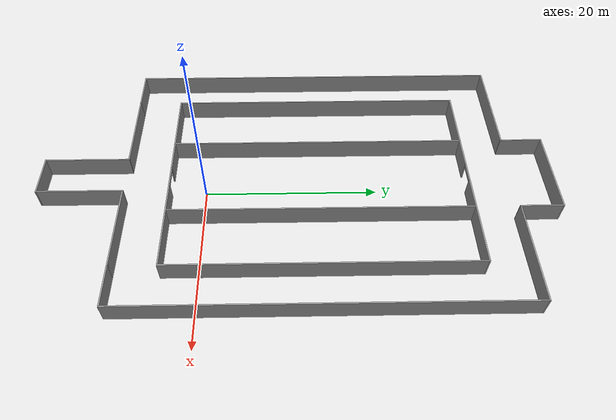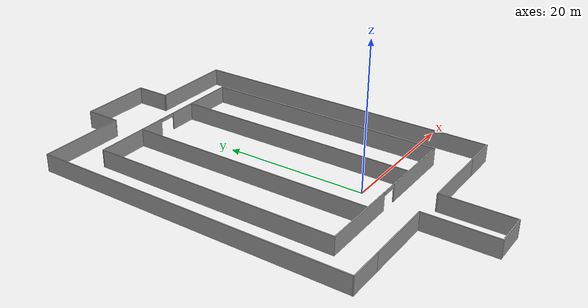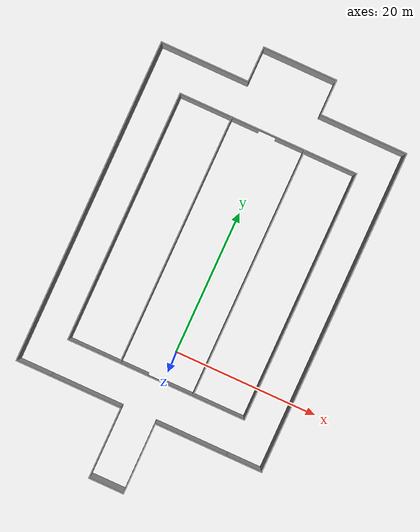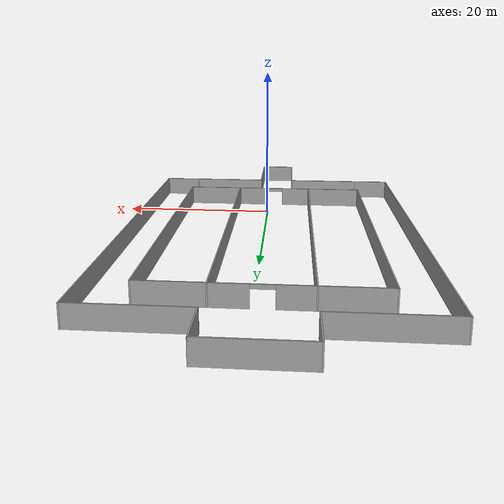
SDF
<?xml version='1.0'?>
<sdf version='1.7'>
  <model name='corridor_sowd'>
    <pose>-0.940001 10.721 0 0 -0 0</pose>
    <link name='Wall_0'>
      <collision name='Wall_0_Collision'>
        <geometry>
          <box>
            <size>34.807 0.15 2.5</size>
          </box>
        </geometry>
        <pose>0 0 1.25 0 -0 0</pose>
      </collision>
      <visual name='Wall_0_Visual'>
        <pose>0 0 1.25 0 -0 0</pose>
        <geometry>
          <box>
            <size>34.807 0.15 2.5</size>
          </box>
        </geometry>
        <material>
          <script>
            <uri>file://media/materials/scripts/gazebo.material</uri>
            <name>Gazebo/Grey</name>
          </script>
          <ambient>1 1 1 1</ambient>
        </material>
        <meta>
          <layer>0</layer>
        </meta>
      </visual>
      <pose>-12.365 2.59651 0 0 -0 -1.5708</pose>
    </link>
    <link name='Wall_2'>
      <pose>0.060001 -14.732 0 0 -0 0</pose>
      <visual name='Wall_2_Visual_0'>
        <pose>-6.85314 0 1.25 0 -0 0</pose>
        <geometry>
          <box>
            <size>11.2937 0.15 2.5</size>
          </box>
        </geometry>
        <material>
          <script>
            <uri>file://media/materials/scripts/gazebo.material</uri>
            <name>Gazebo/Grey</name>
          </script>
          <ambient>1 1 1 1</ambient>
        </material>
        <meta>
          <layer>0</layer>
        </meta>
      </visual>
      <collision name='Wall_2_Collision_0'>
        <geometry>
          <box>
            <size>11.2937 0.15 2.5</size>
          </box>
        </geometry>
        <pose>-6.85314 0 1.25 0 -0 0</pose>
      </collision>
      <visual name='Wall_2_Visual_1'>
        <pose>6.85786 0 1.25 0 -0 0</pose>
        <geometry>
          <box>
            <size>11.2843 0.15 2.5</size>
          </box>
        </geometry>
        <material>
          <script>
            <uri>file://media/materials/scripts/gazebo.material</uri>
            <name>Gazebo/Grey</name>
          </script>
          <ambient>1 1 1 1</ambient>
        </material>
        <meta>
          <layer>0</layer>
        </meta>
      </visual>
      <collision name='Wall_2_Collision_1'>
        <geometry>
          <box>
            <size>11.2843 0.15 2.5</size>
          </box>
        </geometry>
        <pose>6.85786 0 1.25 0 -0 0</pose>
      </collision>
      <visual name='Wall_2_Visual_2'>
        <pose>0.004721 0 2.25 0 -0 0</pose>
        <geometry>
          <box>
            <size>2.422 0.15 0.5</size>
          </box>
        </geometry>
        <material>
          <script>
            <uri>file://media/materials/scripts/gazebo.material</uri>
            <name>Gazebo/Grey</name>
          </script>
          <ambient>1 1 1 1</ambient>
        </material>
        <meta>
          <layer>0</layer>
        </meta>
      </visual>
      <collision name='Wall_2_Collision_2'>
        <geometry>
          <box>
            <size>2.422 0.15 0.5</size>
          </box>
        </geometry>
        <pose>0.004721 0 2.25 0 -0 0</pose>
      </collision>
    </link>
    <link name='Wall_20'>
      <collision name='Wall_20_Collision'>
        <geometry>
          <box>
            <size>5 0.15 2.5</size>
          </box>
        </geometry>
        <pose>0 0 1.25 0 -0 0</pose>
      </collision>
      <visual name='Wall_20_Visual'>
        <pose>0 0 1.25 0 -0 0</pose>
        <geometry>
          <box>
            <size>5 0.15 2.5</size>
          </box>
        </geometry>
        <material>
          <script>
            <uri>file://media/materials/scripts/gazebo.material</uri>
            <name>Gazebo/Grey</name>
          </script>
          <ambient>1 1 1 1</ambient>
        </material>
        <meta>
          <layer>0</layer>
        </meta>
      </visual>
      <pose>-14.85 -19.925 0 0 -0 3.14159</pose>
    </link>
    <link name='Wall_22'>
      <collision name='Wall_22_Collision'>
        <geometry>
          <box>
            <size>10 0.15 2.5</size>
          </box>
        </geometry>
        <pose>0 0 1.25 0 -0 0</pose>
      </collision>
      <visual name='Wall_22_Visual'>
        <pose>0 0 1.25 0 -0 0</pose>
        <geometry>
          <box>
            <size>10 0.15 2.5</size>
          </box>
        </geometry>
        <material>
          <script>
            <uri>file://media/materials/scripts/gazebo.material</uri>
            <name>Gazebo/Grey</name>
          </script>
          <ambient>1 1 1 1</ambient>
        </material>
        <meta>
          <layer>0</layer>
        </meta>
      </visual>
      <pose>-2.549 -24.85 0 0 -0 -1.5708</pose>
    </link>
    <link name='Wall_24'>
      <collision name='Wall_24_Collision'>
        <geometry>
          <box>
            <size>5 0.15 2.5</size>
          </box>
        </geometry>
        <pose>0 0 1.25 0 -0 0</pose>
      </collision>
      <visual name='Wall_24_Visual'>
        <pose>0 0 1.25 0 -0 0</pose>
        <geometry>
          <box>
            <size>5 0.15 2.5</size>
          </box>
        </geometry>
        <material>
          <script>
            <uri>file://media/materials/scripts/gazebo.material</uri>
            <name>Gazebo/Grey</name>
          </script>
          <ambient>1 1 1 1</ambient>
        </material>
        <meta>
          <layer>0</layer>
        </meta>
      </visual>
      <pose>-0.123999 -29.7745 0 0 -0 0.000206</pose>
    </link>
    <link name='Wall_26'>
      <collision name='Wall_26_Collision'>
        <geometry>
          <box>
            <size>10 0.15 2.5</size>
          </box>
        </geometry>
        <pose>0 0 1.25 0 -0 0</pose>
      </collision>
      <visual name='Wall_26_Visual'>
        <pose>0 0 1.25 0 -0 0</pose>
        <geometry>
          <box>
            <size>10 0.15 2.5</size>
          </box>
        </geometry>
        <material>
          <script>
            <uri>file://media/materials/scripts/gazebo.material</uri>
            <name>Gazebo/Grey</name>
          </script>
          <ambient>1 1 1 1</ambient>
        </material>
        <meta>
          <layer>0</layer>
        </meta>
      </visual>
      <pose>2.301 -24.85 0 0 -0 -1.5708</pose>
    </link>
    <link name='Wall_28'>
      <collision name='Wall_28_Collision'>
        <geometry>
          <box>
            <size>5 0.15 2.5</size>
          </box>
        </geometry>
        <pose>0 0 1.25 0 -0 0</pose>
      </collision>
      <visual name='Wall_28_Visual'>
        <pose>0 0 1.25 0 -0 0</pose>
        <geometry>
          <box>
            <size>5 0.15 2.5</size>
          </box>
        </geometry>
        <material>
          <script>
            <uri>file://media/materials/scripts/gazebo.material</uri>
            <name>Gazebo/Grey</name>
          </script>
          <ambient>1 1 1 1</ambient>
        </material>
        <meta>
          <layer>0</layer>
        </meta>
      </visual>
      <pose>14.85 -19.925 0 0 -0 0</pose>
    </link>
    <link name='Wall_4'>
      <collision name='Wall_4_Collision'>
        <geometry>
          <box>
            <size>34.807 0.15 2.5</size>
          </box>
        </geometry>
        <pose>0 0 1.25 0 -0 0</pose>
      </collision>
      <visual name='Wall_4_Visual'>
        <pose>0 0 1.25 0 -0 0</pose>
        <geometry>
          <box>
            <size>34.807 0.15 2.5</size>
          </box>
        </geometry>
        <material>
          <script>
            <uri>file://media/materials/scripts/gazebo.material</uri>
            <name>Gazebo/Grey</name>
          </script>
          <ambient>1 1 1 1</ambient>
        </material>
        <meta>
          <layer>0</layer>
        </meta>
      </visual>
      <pose>12.485 2.59651 0 0 -0 1.5708</pose>
    </link>
    <link name='Wall_42'>
      <collision name='Wall_42_Collision'>
        <geometry>
          <box>
            <size>10.026 0.15 2.5</size>
          </box>
        </geometry>
        <pose>0 0 1.25 0 -0 0</pose>
      </collision>
      <visual name='Wall_42_Visual'>
        <pose>0 0 1.25 0 -0 0</pose>
        <geometry>
          <box>
            <size>10.026 0.15 2.5</size>
          </box>
        </geometry>
        <material>
          <script>
            <uri>file://media/materials/scripts/gazebo.material</uri>
            <name>Gazebo/Grey</name>
          </script>
          <ambient>1 1 1 1</ambient>
        </material>
        <meta>
          <layer>0</layer>
        </meta>
      </visual>
      <pose>-7.487 -19.925 0 0 -0 0</pose>
    </link>
    <link name='Wall_44'>
      <collision name='Wall_44_Collision'>
        <geometry>
          <box>
            <size>10.274 0.15 2.5</size>
          </box>
        </geometry>
        <pose>0 0 1.25 0 -0 0</pose>
      </collision>
      <visual name='Wall_44_Visual'>
        <pose>0 0 1.25 0 -0 0</pose>
        <geometry>
          <box>
            <size>10.274 0.15 2.5</size>
          </box>
        </geometry>
        <material>
          <script>
            <uri>file://media/materials/scripts/gazebo.material</uri>
            <name>Gazebo/Grey</name>
          </script>
          <ambient>1 1 1 1</ambient>
        </material>
        <meta>
          <layer>0</layer>
        </meta>
      </visual>
      <pose>7.363 -19.925 0 0 -0 0</pose>
    </link>
    <link name='Wall_46'>
      <collision name='Wall_46_Collision'>
        <geometry>
          <box>
            <size>45 0.15 2.5</size>
          </box>
        </geometry>
        <pose>0 0 1.25 0 -0 0</pose>
      </collision>
      <visual name='Wall_46_Visual'>
        <pose>0 0 1.25 0 -0 0</pose>
        <geometry>
          <box>
            <size>45 0.15 2.5</size>
          </box>
        </geometry>
        <material>
          <script>
            <uri>file://media/materials/scripts/gazebo.material</uri>
            <name>Gazebo/Grey</name>
          </script>
          <ambient>1 1 1 1</ambient>
        </material>
        <meta>
          <layer>0</layer>
        </meta>
      </visual>
      <pose>-17.275 2.50001 0 0 -0 1.5708</pose>
    </link>
    <link name='Wall_48'>
      <collision name='Wall_48_Collision'>
        <geometry>
          <box>
            <size>45 0.15 2.5</size>
          </box>
        </geometry>
        <pose>0 0 1.25 0 -0 0</pose>
      </collision>
      <visual name='Wall_48_Visual'>
        <pose>0 0 1.25 0 -0 0</pose>
        <geometry>
          <box>
            <size>45 0.15 2.5</size>
          </box>
        </geometry>
        <material>
          <script>
            <uri>file://media/materials/scripts/gazebo.material</uri>
            <name>Gazebo/Grey</name>
          </script>
          <ambient>1 1 1 1</ambient>
        </material>
        <meta>
          <layer>0</layer>
        </meta>
      </visual>
      <pose>17.275 2.50001 0 0 -0 1.5708</pose>
    </link>
    <link name='Wall_57'>
      <collision name='Wall_57_Collision'>
        <geometry>
          <box>
            <size>34.807 0.15 2.5</size>
          </box>
        </geometry>
        <pose>0 0 1.25 0 -0 0</pose>
      </collision>
      <visual name='Wall_57_Visual'>
        <pose>0 0 1.25 0 -0 0</pose>
        <geometry>
          <box>
            <size>34.807 0.15 2.5</size>
          </box>
        </geometry>
        <material>
          <script>
            <uri>file://media/materials/scripts/gazebo.material</uri>
            <name>Gazebo/Grey</name>
          </script>
          <ambient>1 1 1 1</ambient>
        </material>
        <meta>
          <layer>0</layer>
        </meta>
      </visual>
      <pose>-5.058 2.59651 0 0 -0 -1.5708</pose>
    </link>
    <link name='Wall_59'>
      <collision name='Wall_59_Collision'>
        <geometry>
          <box>
            <size>34.807 0.15 2.5</size>
          </box>
        </geometry>
        <pose>0 0 1.25 0 -0 0</pose>
      </collision>
      <visual name='Wall_59_Visual'>
        <pose>0 0 1.25 0 -0 0</pose>
        <geometry>
          <box>
            <size>34.807 0.15 2.5</size>
          </box>
        </geometry>
        <material>
          <script>
            <uri>file://media/materials/scripts/gazebo.material</uri>
            <name>Gazebo/Grey</name>
          </script>
          <ambient>1 1 1 1</ambient>
        </material>
        <meta>
          <layer>0</layer>
        </meta>
      </visual>
      <pose>5.197 2.59651 0 0 -0 1.5708</pose>
    </link>
    <link name='Wall_65'>
      <pose>0.060001 19.925 0 0 -0 0</pose>
      <visual name='Wall_65_Visual_0'>
        <pose>-6.89511 0 1.25 0 -0 0</pose>
        <geometry>
          <box>
            <size>11.2098 0.15 2.5</size>
          </box>
        </geometry>
        <material>
          <script>
            <uri>file://media/materials/scripts/gazebo.material</uri>
            <name>Gazebo/Grey</name>
          </script>
          <ambient>1 1 1 1</ambient>
        </material>
        <meta>
          <layer>0</layer>
        </meta>
      </visual>
      <collision name='Wall_65_Collision_0'>
        <geometry>
          <box>
            <size>11.2098 0.15 2.5</size>
          </box>
        </geometry>
        <pose>-6.89511 0 1.25 0 -0 0</pose>
      </collision>
      <visual name='Wall_65_Visual_1'>
        <pose>6.81589 0 1.25 0 -0 0</pose>
        <geometry>
          <box>
            <size>11.3682 0.15 2.5</size>
          </box>
        </geometry>
        <material>
          <script>
            <uri>file://media/materials/scripts/gazebo.material</uri>
            <name>Gazebo/Grey</name>
          </script>
          <ambient>1 1 1 1</ambient>
        </material>
        <meta>
          <layer>0</layer>
        </meta>
      </visual>
      <collision name='Wall_65_Collision_1'>
        <geometry>
          <box>
            <size>11.3682 0.15 2.5</size>
          </box>
        </geometry>
        <pose>6.81589 0 1.25 0 -0 0</pose>
      </collision>
      <visual name='Wall_65_Visual_2'>
        <pose>-0.079212 0 2.25 0 -0 0</pose>
        <geometry>
          <box>
            <size>2.422 0.15 0.5</size>
          </box>
        </geometry>
        <material>
          <script>
            <uri>file://media/materials/scripts/gazebo.material</uri>
            <name>Gazebo/Grey</name>
          </script>
          <ambient>1 1 1 1</ambient>
        </material>
        <meta>
          <layer>0</layer>
        </meta>
      </visual>
      <collision name='Wall_65_Collision_2'>
        <geometry>
          <box>
            <size>2.422 0.15 0.5</size>
          </box>
        </geometry>
        <pose>-0.079212 0 2.25 0 -0 0</pose>
      </collision>
    </link>
    <link name='Wall_68'>
      <collision name='Wall_68_Collision'>
        <geometry>
          <box>
            <size>12.367 0.15 2.5</size>
          </box>
        </geometry>
        <pose>0 0 1.25 0 -0 0</pose>
      </collision>
      <visual name='Wall_68_Visual'>
        <pose>0 0 1.25 0 -0 0</pose>
        <geometry>
          <box>
            <size>12.367 0.15 2.5</size>
          </box>
        </geometry>
        <material>
          <script>
            <uri>file://media/materials/scripts/gazebo.material</uri>
            <name>Gazebo/Grey</name>
          </script>
          <ambient>1 1 1 1</ambient>
        </material>
        <meta>
          <layer>0</layer>
        </meta>
      </visual>
      <pose>-11.1665 24.925 0 0 -0 0</pose>
    </link>
    <link name='Wall_70'>
      <collision name='Wall_70_Collision'>
        <geometry>
          <box>
            <size>12.228 0.15 2.5</size>
          </box>
        </geometry>
        <pose>0 0 1.25 0 -0 0</pose>
      </collision>
      <visual name='Wall_70_Visual'>
        <pose>0 0 1.25 0 -0 0</pose>
        <geometry>
          <box>
            <size>12.228 0.15 2.5</size>
          </box>
        </geometry>
        <material>
          <script>
            <uri>file://media/materials/scripts/gazebo.material</uri>
            <name>Gazebo/Grey</name>
          </script>
          <ambient>1 1 1 1</ambient>
        </material>
        <meta>
          <layer>0</layer>
        </meta>
      </visual>
      <pose>11.236 24.925 0 0 -0 0</pose>
    </link>
    <link name='Wall_72'>
      <collision name='Wall_72_Collision'>
        <geometry>
          <box>
            <size>5 0.15 2.5</size>
          </box>
        </geometry>
        <pose>0 0 1.25 0 -0 0</pose>
      </collision>
      <visual name='Wall_72_Visual'>
        <pose>0 0 1.25 0 -0 0</pose>
        <geometry>
          <box>
            <size>5 0.15 2.5</size>
          </box>
        </geometry>
        <material>
          <script>
            <uri>file://media/materials/scripts/gazebo.material</uri>
            <name>Gazebo/Grey</name>
          </script>
          <ambient>1 1 1 1</ambient>
        </material>
        <meta>
          <layer>0</layer>
        </meta>
      </visual>
      <pose>-5.058 27.35 0 0 -0 1.5708</pose>
    </link>
    <link name='Wall_74'>
      <collision name='Wall_74_Collision'>
        <geometry>
          <box>
            <size>5 0.15 2.5</size>
          </box>
        </geometry>
        <pose>0 0 1.25 0 -0 0</pose>
      </collision>
      <visual name='Wall_74_Visual'>
        <pose>0 0 1.25 0 -0 0</pose>
        <geometry>
          <box>
            <size>5 0.15 2.5</size>
          </box>
        </geometry>
        <material>
          <script>
            <uri>file://media/materials/scripts/gazebo.material</uri>
            <name>Gazebo/Grey</name>
          </script>
          <ambient>1 1 1 1</ambient>
        </material>
        <meta>
          <layer>0</layer>
        </meta>
      </visual>
      <pose>5.197 27.35 0 0 -0 1.5708</pose>
    </link>
    <link name='Wall_76'>
      <collision name='Wall_76_Collision'>
        <geometry>
          <box>
            <size>10.405 0.15 2.5</size>
          </box>
        </geometry>
        <pose>0 0 1.25 0 -0 0</pose>
      </collision>
      <visual name='Wall_76_Visual'>
        <pose>0 0 1.25 0 -0 0</pose>
        <geometry>
          <box>
            <size>10.405 0.15 2.5</size>
          </box>
        </geometry>
        <material>
          <script>
            <uri>file://media/materials/scripts/gazebo.material</uri>
            <name>Gazebo/Grey</name>
          </script>
          <ambient>1 1 1 1</ambient>
        </material>
        <meta>
          <layer>0</layer>
        </meta>
      </visual>
      <pose>0.069501 29.775 0 0 -0 0</pose>
    </link>
    <static>1</static>
  </model>
</sdf>
